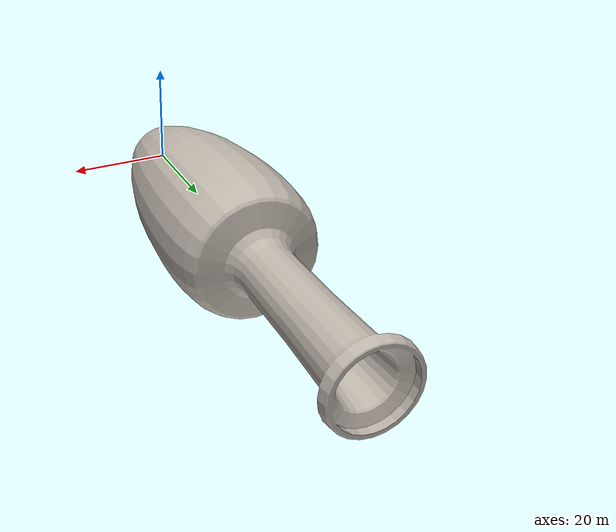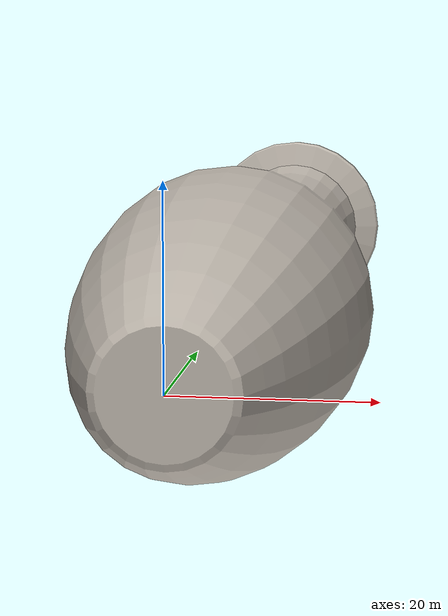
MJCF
<mujoco model="vase">
  <default>
    <default class="visual">
      <geom group="1" type="mesh" contype="0" conaffinity="0"/>
    </default>
    <default class="collision">
      <geom group="0" type="mesh"/>
    </default>
  </default>
  <asset>
    <texture type="2d" name="texture" file="texture.png"/>
    <material name="material_0" texture="texture" specular="0.5" shininess="0.5"/>
    <mesh name="vase" file="vase.obj"/>
  </asset>
  <worldbody>
    <body>
      <body name="object">
        <geom material="material_0" mesh="vase" class="visual"/>
        <geom mesh="vase" class="collision"/>
      </body>
    </body>
  </worldbody>
</mujoco>
